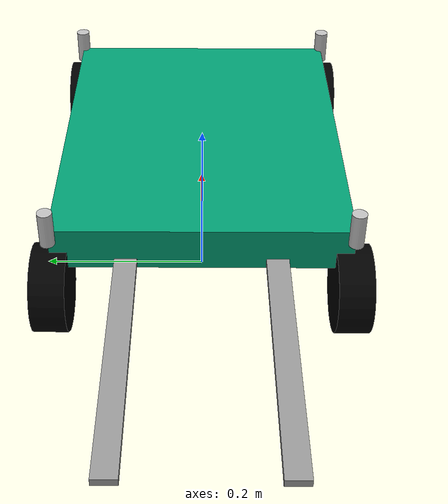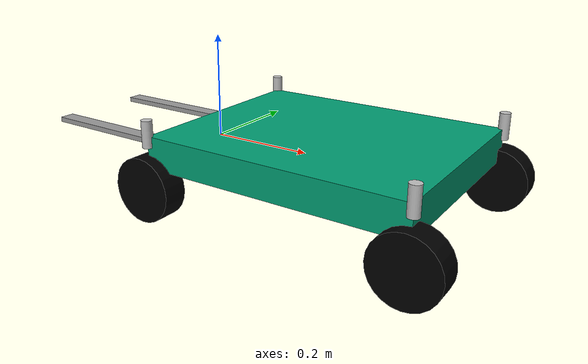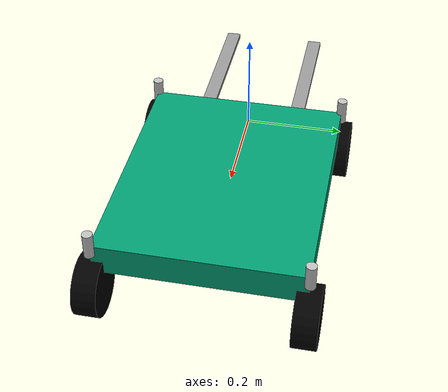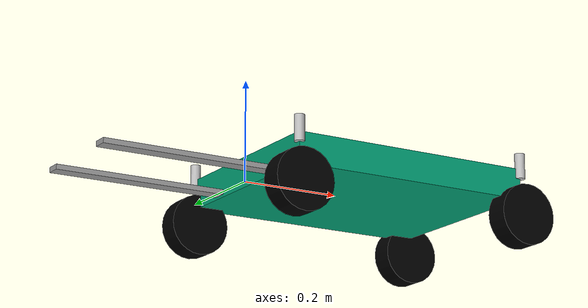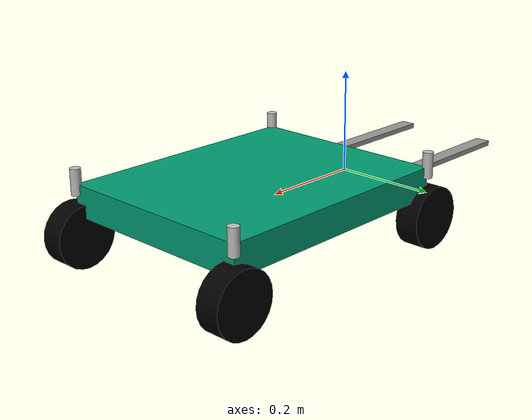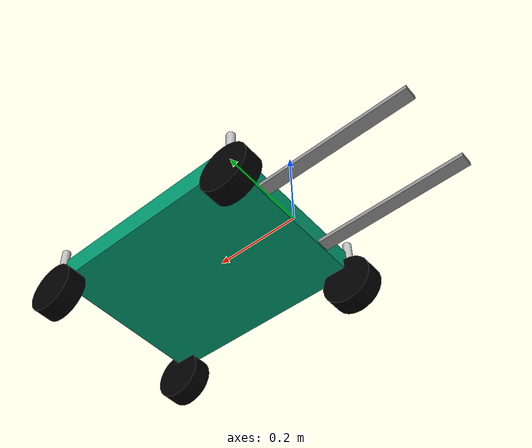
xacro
<?xml version="1.0"?>
<robot xmlns:xacro="http://ros.org/wiki/xacro" name="car">
  <xacro:arg name="wheel_diameter" default="0.12"/>

  <xacro:property name="wheel_radius" value="${$(arg wheel_diameter)/2}"/>
  <xacro:property name="wheel_width" value="0.047"/>
  <xacro:property name="wheel_friction" value="1.5"/>
  <xacro:property name="wheelbase_length" value="0.5"/>
  <xacro:property name="front_wheelbase_width" value="0.40"/>
  <xacro:property name="rear_wheelbase_width" value="0.40"/>
  <xacro:property name="wheel_mass" value="0.3"/>
  <xacro:property name="total_mass" value = "5.0"/>
  <xacro:property name="shock_travel" value = "0.09"/>
  <xacro:property name="chassis_height" value = "0.06"/>
  <xacro:property name="chassis_elevation" value = "-0.01"/>
  <xacro:property name="chassis_mass" value = "${total_mass-4*wheel_mass}"/>
  <xacro:property name="fork_length" value ="0.4"/>
  <xacro:property name="fork_width" value ="0.03"/>
  <xacro:property name="fork_height" value ="0.01"/>

  <xacro:macro name="cylinder_inertia" params="m r h">
        <inertia  ixx="${m*(3*r*r+h*h)/12}" ixy = "0" ixz = "0"
                    iyy="${m*(3*r*r+h*h)/12}" iyz = "0"
                    izz="${m*r*r/2}" />
  </xacro:macro>

  <xacro:macro name="box_inertia" params="m x y z">
          <inertia  ixx="${m*(y*y+z*z)/12}" ixy = "0" ixz = "0"
                    iyy="${m*(x*x+z*z)/12}" iyz = "0"
                    izz="${m*(x*x+z*z)/12}" />
  </xacro:macro>

  <xacro:macro name="sphere_inertia" params="m r">
          <inertia  ixx="${2*m*r*r/5}" ixy = "0" ixz = "0"
                    iyy="${2*m*r*r/5}" iyz = "0"
                    izz="${2*m*r*r/5}" />
  </xacro:macro>

  <xacro:macro name="cylinder_inertial" params="m r h">
    <inertial>
      <mass value="${m}"/>
      <xacro:cylinder_inertia m="${m}" r="${r}" h="${h}"/>
    </inertial>
  </xacro:macro>

  <link name="base_footprint"/>

  <link name="base_link"/>
  <link name="chassis_link">
    <visual>
      <geometry>
        <box size="${wheelbase_length} ${front_wheelbase_width} ${chassis_height}"/>
      </geometry>
    </visual>
    <collision>
      <geometry>
        <box size="${wheelbase_length} ${front_wheelbase_width} ${chassis_height}"/>
      </geometry>
    </collision>
    <inertial>
      <mass value="${chassis_mass}"/>
      <xacro:box_inertia m="${chassis_mass}" x="${wheelbase_length}" y="${front_wheelbase_width}" z="${chassis_height}"/>
    </inertial>
  </link>

  <link name="back_left_wheel">
    <visual>
      <geometry>
        <cylinder length="${wheel_width}" radius="${wheel_radius}"/>
      </geometry>
      <material name="black">
        <color rgba="0 0 0 1"/>
      </material>
    </visual>
    <collision>
      <geometry>
        <cylinder length="${wheel_width}" radius="${wheel_radius}"/>
      </geometry>
    </collision>

    <xacro:cylinder_inertial m="${wheel_mass}" r="${wheel_radius}" h="${wheel_width}"/>
  </link>

  <link name="back_right_wheel">
    <visual>
      <geometry>
        <cylinder length="${wheel_width}" radius="${wheel_radius}"/>
      </geometry>
      <material name="black">
        <color rgba="0 0 0 1"/>
      </material>
    </visual>
    <collision>
      <geometry>
        <cylinder length="${wheel_width}" radius="${wheel_radius}"/>
      </geometry>
    </collision>
    <xacro:cylinder_inertial m="${wheel_mass}" r="${wheel_radius}" h="${wheel_width}"/>
  </link>

  <link name="front_left_wheel_steer">
    <visual>
      <geometry>
        <cylinder length="0.01" radius="0.01"/>
      </geometry>
      <material name="black">
        <color rgba="0 0 0 1"/>
      </material>
    </visual>
    <collision>
      <geometry>
        <cylinder length="0.01" radius="0.01"/>
      </geometry>
    </collision>
    <inertial>
      <mass value="0.1"/>
      <inertia ixx="5.1458e-5" iyy="5.1458e-5" izz="6.125e-5"
               ixy="0" ixz="0" iyz="0"/>
    </inertial>
  </link>
    <link name="front_left_wheel">
    <visual>
      <geometry>
        <cylinder length="${wheel_width}" radius="${wheel_radius}"/>
      </geometry>
      <material name="black">
        <color rgba="0 0 0 1"/>
      </material>
    </visual>
    <collision>
      <geometry>
        <cylinder length="${wheel_width}" radius="${wheel_radius}"/>
      </geometry>
    </collision>
    <xacro:cylinder_inertial m="${wheel_mass}" r="${wheel_radius}" h="${wheel_width}"/>
  </link>

  <link name="front_right_wheel_steer">
    <visual>
      <geometry>
        <cylinder length="0.01" radius="0.01"/>
      </geometry>
      <material name="black">
        <color rgba="0 0 0 1"/>
      </material>
    </visual>
    <collision>
      <geometry>
        <cylinder length="0.01" radius="0.01"/>
      </geometry>
    </collision>
    <inertial>
      <mass value="0.1"/>
      <inertia ixx="5.1458e-5" iyy="5.1458e-5" izz="6.125e-5"
               ixy="0" ixz="0" iyz="0"/>
    </inertial>
  </link>

  <link name="front_right_wheel">
    <visual>
      <geometry>
        <cylinder length="${wheel_width}" radius="${wheel_radius}"/>
      </geometry>
      <material name="black">
        <color rgba="0 0 0 1"/>
      </material>
    </visual>
    <collision>
      <geometry>
        <cylinder length="${wheel_width}" radius="${wheel_radius}"/>
      </geometry>
    </collision>
    <xacro:cylinder_inertial m="${wheel_mass}" r="${wheel_radius}" h="${wheel_width}"/>
  </link>

  <link name="back_left_wheel_shock">
      <visual>
      <origin xyz="0 0 0.1" rpy="0 0 0"/>
      <geometry>
        <cylinder length="0.05" radius="0.01"/>
      </geometry>
      <material name="silver">
        <color rgba="0.75 0.75 0.75 1"/>
      </material>
    </visual>
    <collision>
      <origin xyz="0 0 0.1" rpy="0 0 0"/>
      <geometry>
        <cylinder length="0.05" radius="0.01"/>
      </geometry>
    </collision>
    <inertial>
      <mass value="0.01"/>
      <inertia ixx="0.015" iyy="0.0375" izz="0.0375"
               ixy="0" ixz="0" iyz="0"/>
    </inertial>
  </link>

  <link name="back_right_wheel_shock">
    <visual>
    <origin xyz="0 0 0.1" rpy="0 0 0"/>
    <geometry>
      <cylinder length="0.05" radius="0.01"/>
    </geometry>
    <material name="silver">
      <color rgba="0.75 0.75 0.75 1"/>
    </material>
  </visual>
  <collision>
    <origin xyz="0 0 0.1" rpy="0 0 0"/>
    <geometry>
      <cylinder length="0.05" radius="0.01"/>
    </geometry>
  </collision>
  <inertial>
    <mass value="0.01"/>
    <inertia ixx="0.015" iyy="0.0375" izz="0.0375"
              ixy="0" ixz="0" iyz="0"/>
  </inertial>
</link>

  <link name="front_left_wheel_shock">
      <visual>
      <origin xyz="0 0 0.1" rpy="0 0 0"/>
      <geometry>
        <cylinder length="0.05" radius="0.01"/>
      </geometry>
      <material name="silver">
        <color rgba="0.75 0.75 0.75 1"/>
      </material>
    </visual>
    <collision>
      <origin xyz="0 0 0.1" rpy="0 0 0"/>
      <geometry>
        <cylinder length="0.05" radius="0.01"/>
      </geometry>
    </collision>
    <inertial>
      <mass value="0.01"/>
      <inertia ixx="0.015" iyy="0.0375" izz="0.0375"
               ixy="0" ixz="0" iyz="0"/>
    </inertial>
  </link>

  <link name="front_right_wheel_shock">
      <visual>
      <origin xyz="0 0 0.1" rpy="0 0 0"/>
      <geometry>
        <cylinder length="0.05" radius="0.01"/>
      </geometry>
      <material name="silver">
        <color rgba="0.75 0.75 0.75 1"/>
      </material>
    </visual>
    <collision>
      <origin xyz="0 0 0.1" rpy="0 0 0"/>
      <geometry>
        <cylinder length="0.05" radius="0.01"/>
      </geometry>
    </collision>
    <inertial>
      <mass value="0.01"/>
      <inertia ixx="0.015" iyy="0.0375" izz="0.0375"
               ixy="0" ixz="0" iyz="0"/>
    </inertial>
  </link>

    <xacro:macro name="fork_link" params="prefix">
        <link name ="${prefix}_fork_link">
            <visual>
                <geometry>
                    <box size="${fork_length} ${fork_width} ${fork_height}"/>
                </geometry>
                <origin xyz="0 0 0" rpy="0 0 0" />
                <material name="grey"/>
            </visual>
            <collision>
                <geometry>
                    <box size="${fork_length} ${fork_width} ${fork_height}"/>
                </geometry>
                <origin xyz="0 0 0" rpy="0 0 0" />
            </collision>
            <xacro:box_inertia m="0.5" x="${fork_length}" y="${fork_width}" z="${fork_height}"/>
        </link>
    </xacro:macro>

    <xacro:fork_link prefix="left"/>
    <xacro:fork_link prefix="right"/>

  <joint name="base_link_joint" type="fixed">
     <parent link="base_footprint"/>
     <child link="base_link"/>
     <origin rpy="0 0 0" xyz="0 0 0"/>
   </joint>

  <joint name="back_left_shock_joint" type="prismatic">
    <limit lower="0" upper="${shock_travel}" effort="100" velocity="100"/>
    <axis xyz="0 0 1"/>
    <parent link="base_link"/>
    <child link="back_left_wheel_shock"/>
    <origin rpy="0 0 0" xyz="0 ${rear_wheelbase_width/2}  ${-shock_travel/2}"/>
  </joint>

  <joint name="back_left_wheel_joint" type="continuous">
    <axis xyz="0 0 1"/>
    <parent link="back_left_wheel_shock"/>
    <child link="back_left_wheel"/>
    <origin rpy="${-pi/2} 0 0" xyz="0 0 0"/>
    <limit effort="10000" velocity="500" />
  </joint>

  <joint name="back_right_shock_joint" type="prismatic">
    <limit lower="0" upper="${shock_travel}" effort="100" velocity="100"/>
    <axis xyz="0 0 1"/>
    <parent link="base_link"/>
    <child link="back_right_wheel_shock"/>
    <origin rpy="0 0 0" xyz="0 ${-rear_wheelbase_width/2} ${-shock_travel/2}"/>
  </joint>

  <joint name="back_right_wheel_joint" type="continuous">
    <axis xyz="0 0 1"/>
    <parent link="back_right_wheel_shock"/>
    <child link="back_right_wheel"/>
    <origin rpy="${-pi/2} 0 0" xyz="0 0 0"/>
    <limit effort="10000" velocity="500" />
  </joint>

  <joint name="front_right_shock_joint" type="prismatic">
    <limit lower="0" upper="${shock_travel}" effort="100" velocity="100"/>
    <axis xyz="0 0 1"/>
    <parent link="base_link"/>
    <child link="front_right_wheel_shock"/>
    <origin rpy="0 0 0" xyz="${wheelbase_length} ${-front_wheelbase_width/2} ${-shock_travel/2}"/>
  </joint>

  <joint name="front_left_shock_joint" type="prismatic">
    <limit lower="0" upper="${shock_travel}" effort="100" velocity="100"/>
    <axis xyz="0 0 1"/>
    <parent link="base_link"/>
    <child link="front_left_wheel_shock"/>
    <origin rpy="0 0 0" xyz="${wheelbase_length} ${front_wheelbase_width/2}  ${-shock_travel/2}"/>
  </joint>

  <joint name="front_left_wheel_steer_joint" type="revolute">
    <limit lower="-1" upper="1" effort="1" velocity="5"/>
    <axis xyz="0 0 1"/>
    <parent link="front_left_wheel_shock"/>
    <child link="front_left_wheel_steer"/>
    <origin rpy="0 0 0" xyz="0 0 0"/>
  </joint>

  <joint name="front_left_wheel_joint" type="continuous">
    <axis xyz="0 0 1"/>
    <parent link="front_left_wheel_steer"/>
    <child link="front_left_wheel"/>
    <origin rpy="${-pi/2} 0 0" xyz="0 0 0"/>
  </joint>

  <joint name="front_right_wheel_steer_joint" type="revolute">
    <limit lower="-1" upper="1" effort="1" velocity="5"/>
    <axis xyz="0 0 1"/>
    <parent link="front_right_wheel_shock"/>
    <child link="front_right_wheel_steer"/>
    <origin rpy="0 0 0" xyz="0 0 0"/>
  </joint>

  <joint name="front_right_wheel_joint" type="continuous">
    <axis xyz="0 0 1"/>
    <parent link="front_right_wheel_steer"/>
    <child link="front_right_wheel"/>
    <origin rpy="${-pi/2} 0 0" xyz="0 0 0"/>
  </joint>

  <joint name="chassis_joint" type="fixed">
    <parent link="base_link"/>
    <child link="chassis_link"/>
    <origin rpy="0 0 0" xyz="${wheelbase_length/2} 0 ${chassis_height/2 + chassis_elevation}"/>
  </joint>

    <joint name="base_left_fork_joint" type="fixed">
        <parent link="base_link"/>
        <child link="left_fork_link"/>
        <origin xyz="${(-wheelbase_length/2.0)+0.1} ${(front_wheelbase_width/4.0)} 0" rpy="0 0 0" />
    </joint>

    <joint name="base_right_fork_joint" type="fixed">
        <parent link="base_link"/>
        <child link="right_fork_link"/>
        <origin xyz="${(-wheelbase_length/2.0)+0.1} ${(-front_wheelbase_width/4.0)} 0" rpy="0 0 0" />
    </joint>

  <gazebo reference="front_left_wheel">
    <mu1>${wheel_friction}</mu1>
    <material>Gazebo/DarkGrey</material>
  </gazebo>
  <gazebo reference="front_right_wheel">
    <mu1>${wheel_friction}</mu1>
    <material>Gazebo/DarkGrey</material>
  </gazebo>
  <gazebo reference="back_left_wheel">
    <mu1>${wheel_friction}</mu1>
    <material>Gazebo/DarkGrey</material>
  </gazebo>
  <gazebo reference="back_right_wheel">
    <mu1>${wheel_friction}</mu1>
    <material>Gazebo/DarkGrey</material>
  </gazebo>

  <gazebo reference="base_link">
    <dampingFactor>0.00007</dampingFactor>
  </gazebo>
  <gazebo>
    <plugin name="car_gazebo_plugin" filename="libcar_gazebo_plugin.so">
      <ros>
            <!-- Add a namespace -->
      <namespace>/car</namespace>
      </ros>
    </plugin>
  </gazebo>
</robot>
